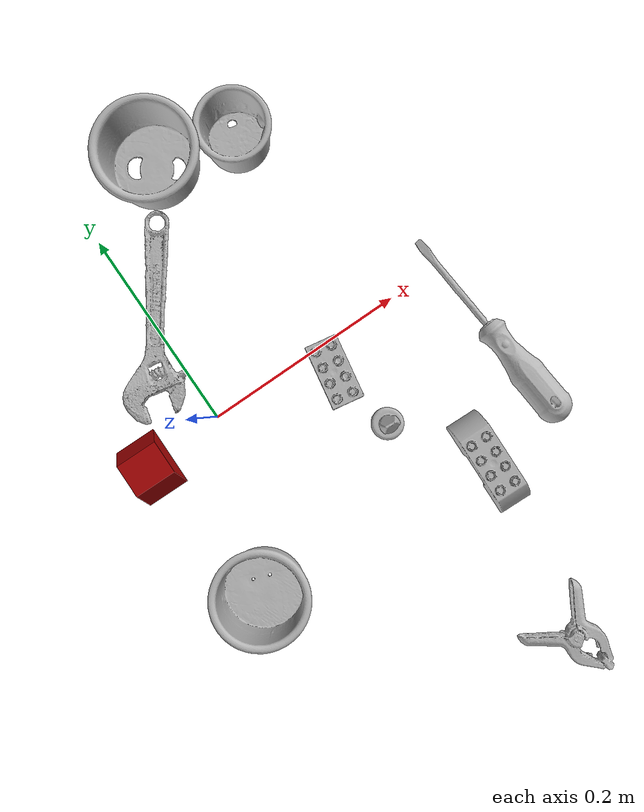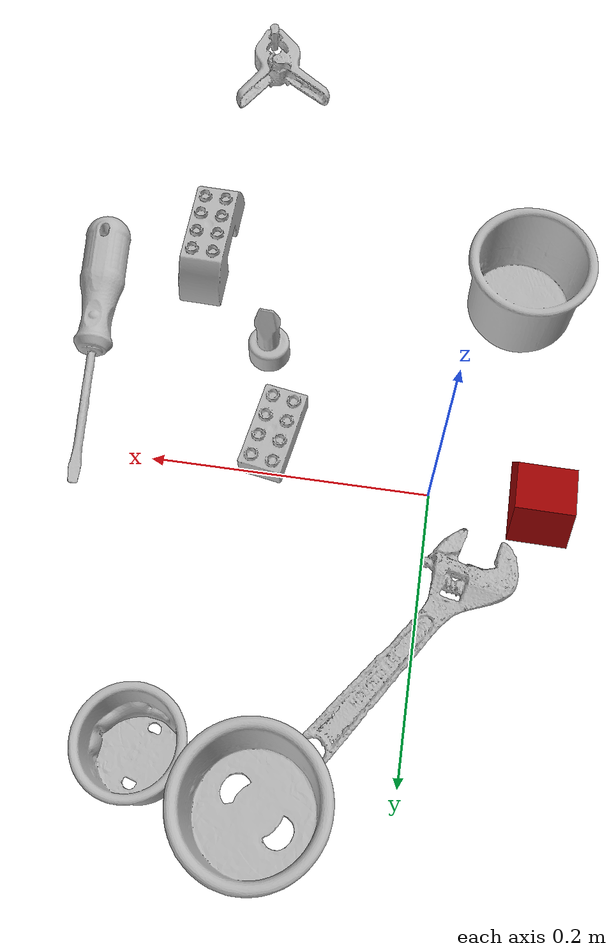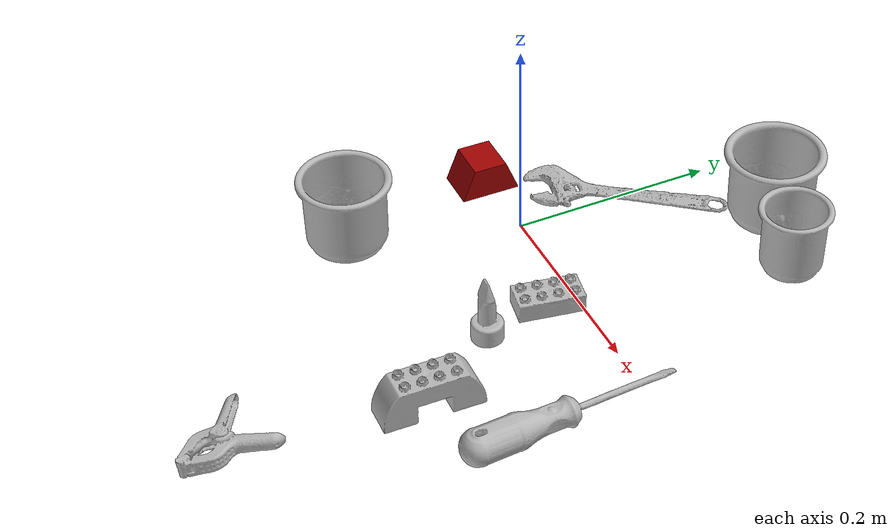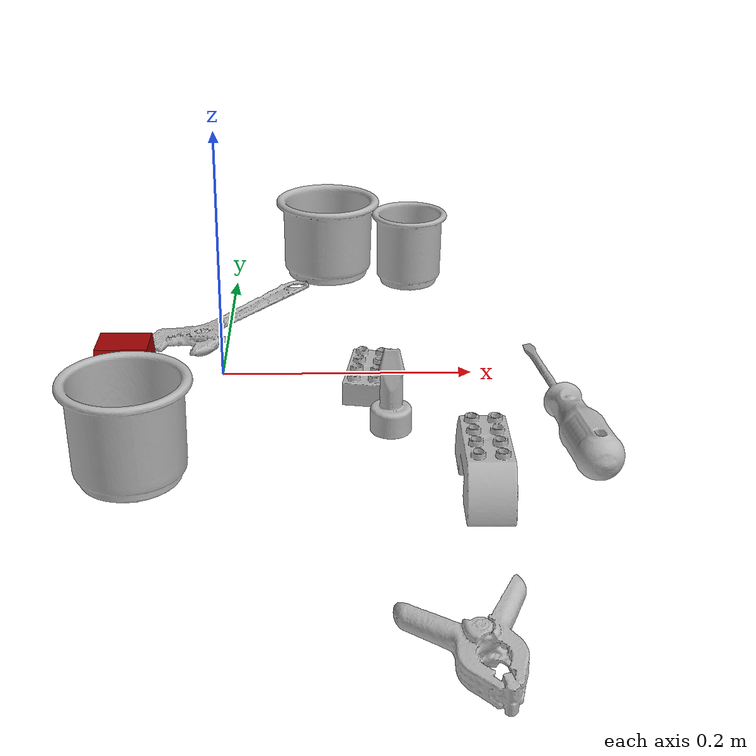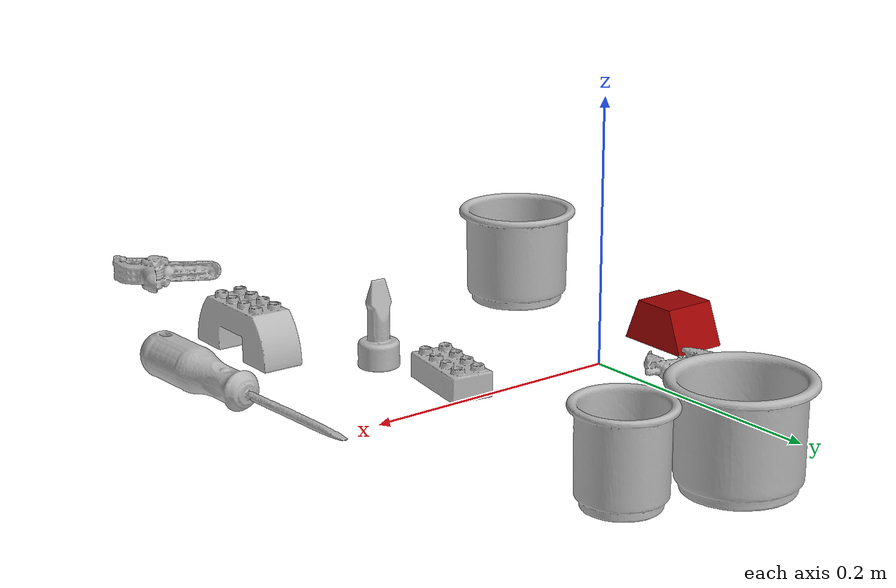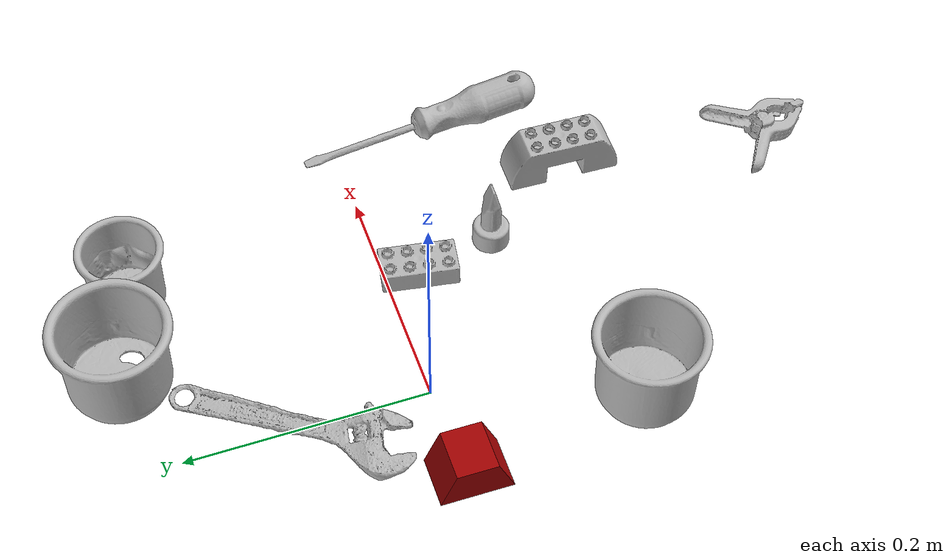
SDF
<sdf version="1.4">
  <world name="default">
    <light name="light1" type="point">
      <pose>0 0 1 0 0 0</pose>
      <diffuse>3 3 3 1</diffuse>
      <specular>3 3 3 1</specular>
    </light>
    <light name="light2" type="point">
      <pose>0 0.5 2 0 0 0</pose>
      <diffuse>1 1 1 1</diffuse>
      <specular>1 1 1 1</specular>
    </light>
    <light name="light3" type="point">
      <pose>0 0.5 2 0 0 0</pose>
      <diffuse>3 3 3 1</diffuse>
      <specular>3 3 3 1</specular>
    </light>
    <scene>
      <ambient>0.7 0.7 0.7</ambient>
    </scene>
    <model name="cup1">
      <link name="link_cup1">
        <collision name="default">
          <geometry>
            <mesh>
              <uri>model://d_cups/collision_meshes/collision.obj</uri>
              <scale>1.0 1.0 1.0</scale>
            </mesh>
          </geometry>
          <surface>
            <friction>
              <ode>
                <mu>0.5</mu>
                <mu2>0.5</mu2>
              </ode>
            </friction>
          <contact>
        <ode>
            <max_vel>0</max_vel>
            <min_depth>0.0001</min_depth>
            <kp>1e8</kp>
        </ode>
    </contact></surface>
        </collision>
        <visual name="default">
          <geometry>
            <mesh>
              <uri>model://d_cups/visual_meshes/visual.dae</uri>
              <scale>1.0 1.0 1.0</scale>
            </mesh>
          </geometry>
        </visual>
        <inertial>
          <mass>0.06783133745193481</mass>
          <pose>0.0008068059105426073 0.0019117397023364902 -0.002266651252284646 0.24012426461604838 -0.24709695541432683 0.5942481546461544</pose>
          <inertia>
            <ixx>5.679078e-05</ixx>
            <iyy>5.662642e-05</iyy>
            <izz>5.1405317e-05</izz>
            <ixy>0</ixy>
            <ixz>0</ixz>
            <iyz>0</iyz>
          </inertia>
        </inertial>
      </link>
      <pose>0.16359558701515198 0.20330418646335602 0.03465826436877251 4.7348217911494325e-05 3.539456618448672e-05 -2.421004699338749</pose>
    </model>
    <model name="cup2">
      <link name="link_cup2">
        <collision name="default">
          <geometry>
            <mesh>
              <uri>model://h_cups/collision_meshes/collision.obj</uri>
              <scale>1.0 1.0 1.0</scale>
            </mesh>
          </geometry>
          <surface>
            <friction>
              <ode>
                <mu>0.5</mu>
                <mu2>0.5</mu2>
              </ode>
            </friction>
          <contact>
        <ode>
            <max_vel>0</max_vel>
            <min_depth>0.0001</min_depth>
            <kp>1e8</kp>
        </ode>
    </contact></surface>
        </collision>
        <visual name="default">
          <geometry>
            <mesh>
              <uri>model://h_cups/visual_meshes/visual.dae</uri>
              <scale>1.0 1.0 1.0</scale>
            </mesh>
          </geometry>
        </visual>
        <inertial>
          <mass>0.0420527309179306</mass>
          <pose>-2.702834171941504e-05 0.0002301869390066713 -0.0018405404407531023 -0.02436231807299455 0.06545237013505961 0.1288477560592675</pose>
          <inertia>
            <ixx>5.430915e-05</ixx>
            <iyy>5.3661057e-05</iyy>
            <izz>5.69554e-05</izz>
            <ixy>0</ixy>
            <ixz>0</ixz>
            <iyz>0</iyz>
          </inertia>
        </inertial>
      </link>
      <pose>-0.05278909206390381 -0.15859834849834442 0.0377579890191555 -3.410632236355915e-07 -2.2361167530712958e-08 -1.9868917122291438</pose>
    </model>
    <model name="cup3">
      <link name="link_cup3">
        <collision name="default">
          <geometry>
            <mesh>
              <uri>model://i_cups/collision_meshes/collision.obj</uri>
              <scale>1.0 1.0 1.0</scale>
            </mesh>
          </geometry>
          <surface>
            <friction>
              <ode>
                <mu>0.5</mu>
                <mu2>0.5</mu2>
              </ode>
            </friction>
          <contact>
        <ode>
            <max_vel>0</max_vel>
            <min_depth>0.0001</min_depth>
            <kp>1e8</kp>
        </ode>
    </contact></surface>
        </collision>
        <visual name="default">
          <geometry>
            <mesh>
              <uri>model://i_cups/visual_meshes/visual.dae</uri>
              <scale>1.0 1.0 1.0</scale>
            </mesh>
          </geometry>
        </visual>
        <inertial>
          <mass>0.1172947883605957</mass>
          <pose>0.00011240218736929819 0.00016797319403849542 -0.0008579035638831556 -0.028982974239284674 -0.039873277979934216 -0.3459139003356122</pose>
          <inertia>
            <ixx>0.00016239638</ixx>
            <iyy>0.00016382721</iyy>
            <izz>0.00018150422</izz>
            <ixy>0</ixy>
            <ixz>0</ixz>
            <iyz>0</iyz>
          </inertia>
        </inertial>
      </link>
      <pose>0.08670797199010849 0.22773908078670502 0.03778436779975891 0.0020455871791396313 -0.005970863559432785 2.214682836351136</pose>
    </model>
    <model name="toy1">
      <link name="link_toy1">
        <collision name="default">
          <geometry>
            <mesh>
              <uri>model://prism/collision_meshes/collision.obj</uri>
              <scale>0.5 0.5 0.5</scale>
            </mesh>
          </geometry>
          <surface>
            <friction>
              <ode>
                <mu>0.5</mu>
                <mu2>0.5</mu2>
              </ode>
            </friction>
          <contact>
        <ode>
            <max_vel>0</max_vel>
            <min_depth>0.0001</min_depth>
            <kp>1e8</kp>
        </ode>
    </contact></surface>
        </collision>
        <visual name="default">
          <geometry>
            <mesh>
              <uri>model://prism/visual_meshes/visual.dae</uri>
              <scale>0.5 0.5 0.5</scale>
            </mesh>
          </geometry>
        </visual>
        <inertial>
          <mass>0.04854338616132736</mass>
          <pose>-4.92679828312248e-05 -2.480786349678965e-07 -0.0016934549203142524 0.0 0.006559181697473799 0.0</pose>
          <inertia>
            <ixx>1.0952453e-05</ixx>
            <iyy>1.3236178e-05</iyy>
            <izz>1.6212734e-05</izz>
            <ixy>0</ixy>
            <ixz>0</ixz>
            <iyz>0</iyz>
          </inertia>
        </inertial>
      </link>
      <pose>-0.07810411602258682 -0.004513975232839584 0.016085000708699226 1.1955223773527228e-08 -1.9034462927769516e-08 -1.581435411051132</pose>
    </model>
    <model name="toy2">
      <link name="link_toy2">
        <collision name="default">
          <geometry>
            <mesh>
              <uri>model://e_toy_airplane/collision_meshes/collision.obj</uri>
              <scale>1.0 1.0 1.0</scale>
            </mesh>
          </geometry>
          <surface>
            <friction>
              <ode>
                <mu>0.5</mu>
                <mu2>0.5</mu2>
              </ode>
            </friction>
          <contact>
        <ode>
            <max_vel>0</max_vel>
            <min_depth>0.0001</min_depth>
            <kp>1e8</kp>
        </ode>
    </contact></surface>
        </collision>
        <visual name="default">
          <geometry>
            <mesh>
              <uri>model://e_toy_airplane/visual_meshes/visual.dae</uri>
              <scale>1.0 1.0 1.0</scale>
            </mesh>
          </geometry>
        </visual>
        <inertial>
          <mass>0.014407381415367126</mass>
          <pose>0.00011740459740394726 -2.2482932763523422e-05 -0.011187206022441387 0.005518488041491648 0.009228285270614433 0.15041380385765837</pose>
          <inertia>
            <ixx>4.397297e-06</ixx>
            <iyy>4.352315e-06</iyy>
            <izz>1.3215607e-06</izz>
            <ixy>0</ixy>
            <ixz>0</ixz>
            <iyz>0</iyz>
          </inertia>
        </inertial>
      </link>
      <pose>0.1296064853668213 -0.09584473073482513 0.03321220353245735 7.192160796665391e-05 -9.493690114921885e-05 -1.762736565611207</pose>
    </model>
    <model name="toy3">
      <link name="link_toy3">
        <collision name="default">
          <geometry>
            <mesh>
              <uri>model://e_lego_duplo/collision_meshes/collision.obj</uri>
              <scale>1.0 1.0 1.0</scale>
            </mesh>
          </geometry>
          <surface>
            <friction>
              <ode>
                <mu>0.5</mu>
                <mu2>0.5</mu2>
              </ode>
            </friction>
          <contact>
        <ode>
            <max_vel>0</max_vel>
            <min_depth>0.0001</min_depth>
            <kp>1e8</kp>
        </ode>
    </contact></surface>
        </collision>
        <visual name="default">
          <geometry>
            <mesh>
              <uri>model://e_lego_duplo/visual_meshes/visual.dae</uri>
              <scale>1.0 1.0 1.0</scale>
            </mesh>
          </geometry>
        </visual>
        <inertial>
          <mass>0.059077512472867966</mass>
          <pose>0.00032560460385866463 0.0002348544221604243 0.0019521447829902172 -0.0225678114641467 -6.824730634042773e-05 -0.007625154901652298</pose>
          <inertia>
            <ixx>1.2319611e-05</ixx>
            <iyy>5.0562856e-05</iyy>
            <izz>4.923807e-05</izz>
            <ixy>0</ixy>
            <ixz>0</ixz>
            <iyz>0</iyz>
          </inertia>
        </inertial>
      </link>
      <pose>0.18812508881092072 -0.17884202301502228 0.02180900052189827 1.2398452213216138e-07 -2.171607977654621e-08 1.5474645397635736</pose>
    </model>
    <model name="toy4">
      <link name="link_toy4">
        <collision name="default">
          <geometry>
            <mesh>
              <uri>model://c_lego_duplo/collision_meshes/collision.obj</uri>
              <scale>1.0 1.0 1.0</scale>
            </mesh>
          </geometry>
          <surface>
            <friction>
              <ode>
                <mu>0.5</mu>
                <mu2>0.5</mu2>
              </ode>
            </friction>
          <contact>
        <ode>
            <max_vel>0</max_vel>
            <min_depth>0.0001</min_depth>
            <kp>1e8</kp>
        </ode>
    </contact></surface>
        </collision>
        <visual name="default">
          <geometry>
            <mesh>
              <uri>model://c_lego_duplo/visual_meshes/visual.dae</uri>
              <scale>1.0 1.0 1.0</scale>
            </mesh>
          </geometry>
        </visual>
        <inertial>
          <mass>0.019630447030067444</mass>
          <pose>0.000316459103487432 0.00019464583601802588 0.0010453149443492293 -0.011520787241280632 0.0059000791517924015 0.031100331826339908</pose>
          <inertia>
            <ixx>7.554163e-06</ixx>
            <iyy>2.4130718e-06</iyy>
            <izz>8.827816e-06</izz>
            <ixy>0</ixy>
            <ixz>0</ixz>
            <iyz>0</iyz>
          </inertia>
        </inertial>
      </link>
      <pose>0.11573610454797745 -0.028018349781632423 0.011981487274169922 0.008019224178873116 -0.002091615574701242 2.948019570260368</pose>
    </model>
    <model name="hardware1">
      <link name="link_hardware1">
        <collision name="default">
          <geometry>
            <mesh>
              <uri>model://flat_screwdriver/collision_meshes/collision.obj</uri>
              <scale>1.0 1.0 1.0</scale>
            </mesh>
          </geometry>
          <surface>
            <friction>
              <ode>
                <mu>0.5</mu>
                <mu2>0.5</mu2>
              </ode>
            </friction>
          <contact>
        <ode>
            <max_vel>0</max_vel>
            <min_depth>0.0001</min_depth>
            <kp>1e8</kp>
        </ode>
    </contact></surface>
        </collision>
        <visual name="default">
          <geometry>
            <mesh>
              <uri>model://flat_screwdriver/visual_meshes/visual.dae</uri>
              <scale>1.0 1.0 1.0</scale>
            </mesh>
          </geometry>
        </visual>
        <inertial>
          <mass>0.05795019492506981</mass>
          <pose>-0.0489187128841877 -0.0006576800369657576 -0.0006140916375443339 -0.5616548332173045 -0.0032337243504420286 0.0069822829580931615</pose>
          <inertia>
            <ixx>6.846775e-06</ixx>
            <iyy>8.6921296e-05</iyy>
            <izz>8.688106e-05</izz>
            <ixy>0</ixy>
            <ixz>0</ixz>
            <iyz>0</iyz>
          </inertia>
        </inertial>
      </link>
      <pose>0.258716881275177 -0.07920458912849426 0.015338655561208725 -0.21441031217886172 0.04069449179042312 1.6505325417840149</pose>
    </model>
    <model name="hardware2">
      <link name="link_hardware2">
        <collision name="default">
          <geometry>
            <mesh>
              <uri>model://medium_clamp/collision_meshes/collision.obj</uri>
              <scale>1.0 1.0 1.0</scale>
            </mesh>
          </geometry>
          <surface>
            <friction>
              <ode>
                <mu>0.5</mu>
                <mu2>0.5</mu2>
              </ode>
            </friction>
          <contact>
        <ode>
            <max_vel>0</max_vel>
            <min_depth>0.0001</min_depth>
            <kp>1e8</kp>
        </ode>
    </contact></surface>
        </collision>
        <visual name="default">
          <geometry>
            <mesh>
              <uri>model://medium_clamp/visual_meshes/visual.dae</uri>
              <scale>1.0 1.0 1.0</scale>
            </mesh>
          </geometry>
        </visual>
        <inertial>
          <mass>0.028340468183159828</mass>
          <pose>0.0053909942507743835 0.0003953247796744108 -0.0001222157443407923 -0.001226920261124021 0.0025845025680982987 0.03820769890719856</pose>
          <inertia>
            <ixx>7.720961e-06</ixx>
            <iyy>1.1236185e-05</iyy>
            <izz>1.7307093e-05</izz>
            <ixy>0</ixy>
            <ixz>0</ixz>
            <iyz>0</iyz>
          </inertia>
        </inertial>
      </link>
      <pose>0.16229429841041565 -0.3563113212585449 0.013533334247767925 0.07727607722711984 0.08543913699129567 -1.3182334004500105</pose>
    </model>
    <model name="hardware3">
      <link name="link_hardware3">
        <collision name="default">
          <geometry>
            <mesh>
              <uri>model://adjustable_wrench/collision_meshes/collision.obj</uri>
              <scale>1.0 1.0 1.0</scale>
            </mesh>
          </geometry>
          <surface>
            <friction>
              <ode>
                <mu>0.5</mu>
                <mu2>0.5</mu2>
              </ode>
            </friction>
          <contact>
        <ode>
            <max_vel>0</max_vel>
            <min_depth>0.0001</min_depth>
            <kp>1e8</kp>
        </ode>
    </contact></surface>
        </collision>
        <visual name="default">
          <geometry>
            <mesh>
              <uri>model://adjustable_wrench/visual_meshes/visual.dae</uri>
              <scale>1.0 1.0 1.0</scale>
            </mesh>
          </geometry>
        </visual>
        <inertial>
          <mass>0.023935195058584213</mass>
          <pose>0.03740980476140976 -0.0028968877159059048 -0.001114922808483243 -0.014473210185193002 0.006656019736435525 -0.010954188403863873</pose>
          <inertia>
            <ixx>4.898683e-06</ixx>
            <iyy>5.733333e-05</iyy>
            <izz>6.197185e-05</izz>
            <ixy>0</ixy>
            <ixz>0</ixz>
            <iyz>0</iyz>
          </inertia>
        </inertial>
      </link>
      <pose>0.0054152961820364 0.10617297887802124 0.0061251092702150345 0.04675899363069988 -0.029269492647515136 -2.192286290726015</pose>
    </model>
  <physics type="ode">
      <max_contacts>50</max_contacts>
      <ode>
        <solver>
          <type>quick</type>
          <iters>75</iters>
        </solver>
        <constraints>
          <contact_max_correcting_vel>0</contact_max_correcting_vel>
          <contact_surface_layer>0</contact_surface_layer>
        </constraints>
      </ode>
    </physics></world>
</sdf>
